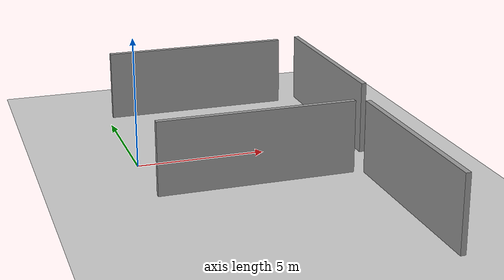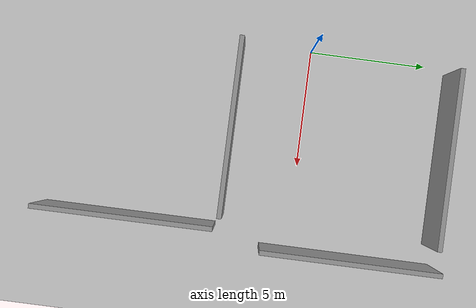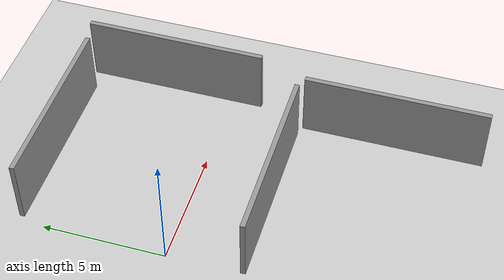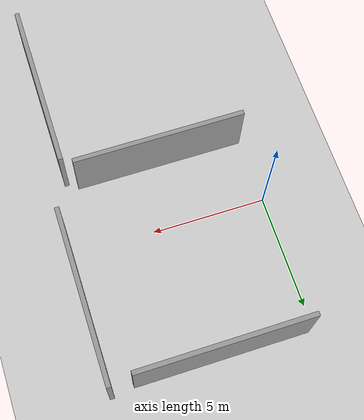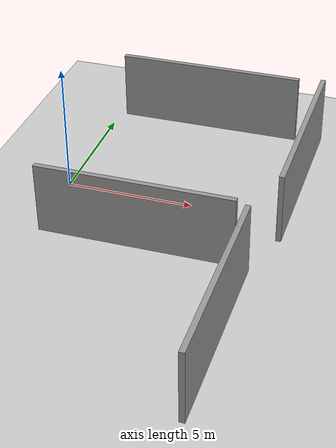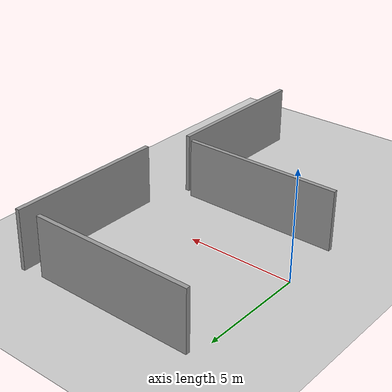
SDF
<?xml version="1.0" ?>
<sdf version="1.5">
  <world name="default">
		<scene>
			<ambient>0.0 0.0 0.0 1.0</ambient>
			<shadows>0</shadows>
		</scene>
    <include>
      <uri>model://ground_plane</uri>
    </include>
    <include>
      <uri>model://sun</uri>
    </include>

    <include>
      <name>wall1</name>
      <pose> 3.8 -3.04 0.02 0 0 0.0</pose>
      <uri>model://grey_wall</uri>
    </include>

    <include>
      <name>wall2</name>
      <pose> 8.7 2.5 0.02 0 0 1.57</pose>
      <uri>model://grey_wall</uri>
    </include>

    <include>
      <name>wall3</name>
      <pose> 4 6 0.02 0 0 0</pose>
      <uri>model://grey_wall</uri>
    </include>

    <include>
      <name>wall4</name>
      <pose>8 -7 0.02 0 0 -1.57</pose>
      <uri>model://grey_wall</uri>
    </include>
  </world>
</sdf>

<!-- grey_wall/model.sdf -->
<sdf version="1.5">
  <model name="grey_wall">
    <static>true</static>
    <link name="link">
      <pose>0 0 1.4 0 0 0</pose>
      <collision name="collision">
        <geometry>
          <box>
            <size>7.5 0.2 2.8</size>
          </box>
        </geometry>
      </collision>
      <visual name="visual">
        <cast_shadows>false</cast_shadows>
        <geometry>
          <box>
            <size>7.5 0.2 2.8</size>
          </box>
        </geometry>
        <material>
          <script>
            <uri>model://../model_source/models/grey_wall/materials/scripts</uri>
            <uri>model://../model_source/models/grey_wall/materials/textures</uri>
            <name>vrc/grey_wall</name>
          </script>
        </material>
      </visual>
    </link>
  </model>
</sdf>
